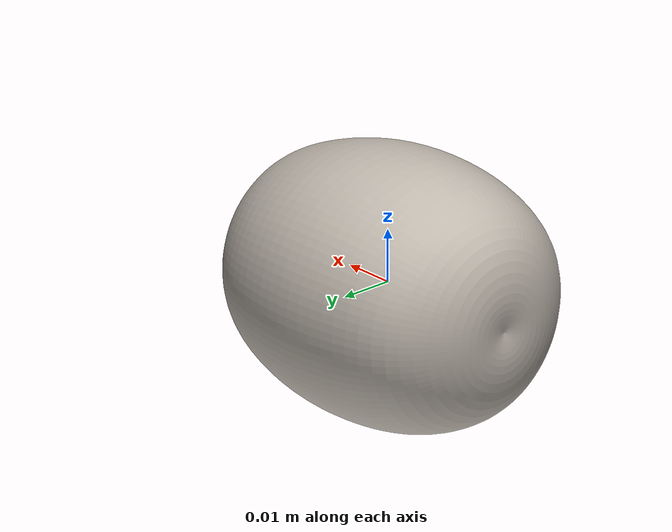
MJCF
<mujoco model="kiwi_1">
    <compiler angle="radian" meshdir="../meshes/" texturedir="../textures/" autolimits="true" inertiafromgeom="false"/>
    <asset>
        <mesh name="Kiwi1Peel" file="obj/KiwiPeel.obj" />
        <material name="M_Kiwi1Peel" texture="T_Kiwi1Peel"/>
		<texture name="T_Kiwi1Peel" type="2d" file="T_KiwiPeel.png"/>
    </asset>
    <worldbody>
        <body name="kiwi_1">
            <freejoint />
            <inertial mass="0.005380956456065178" pos="-0.000302992295473814 1.3596726522457914e-10 -1.3967094503186672e-07" quat="1.0 7.579012417657793e-11 1.6898036847123876e-05 -1.2874026497633473e-11" diaginertia="2.360427060921211e-06 2.8911117624375038e-06 2.952132035716204e-06"/>
            <geom name="Kiwi1" pos="0.0 0.0 0.0" quat="1.0 0.0 0.0 0.0" type="mesh" mesh="Kiwi1Peel" material="M_Kiwi1Peel"/>
        </body>
    </worldbody>
    <equality />
    <contact />
</mujoco>
